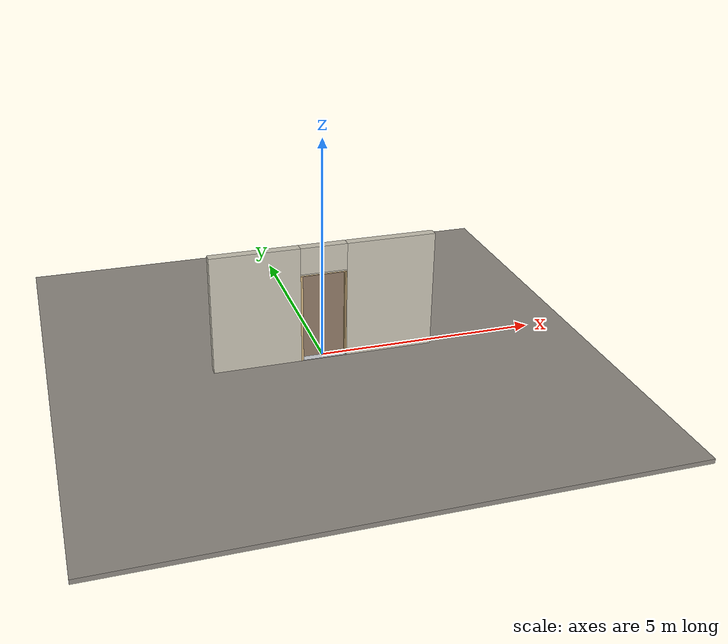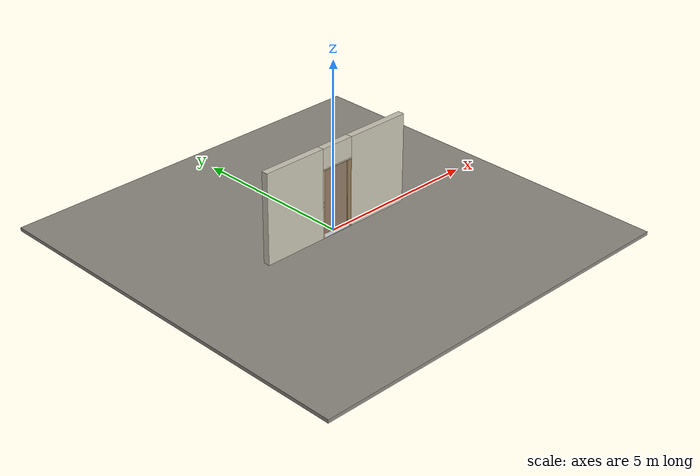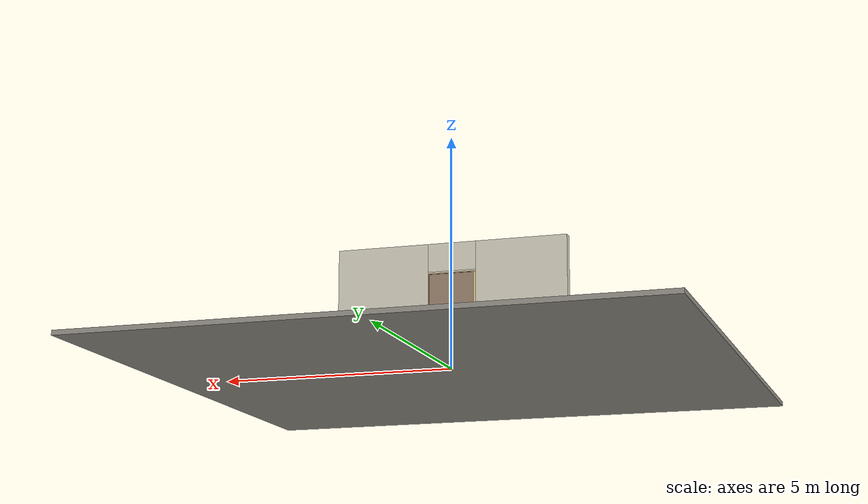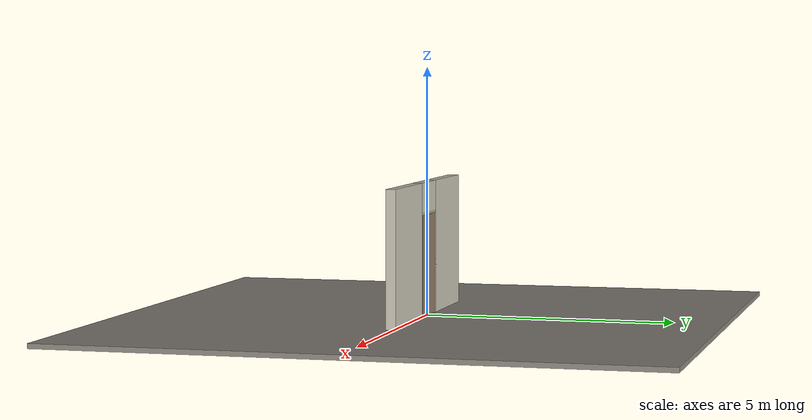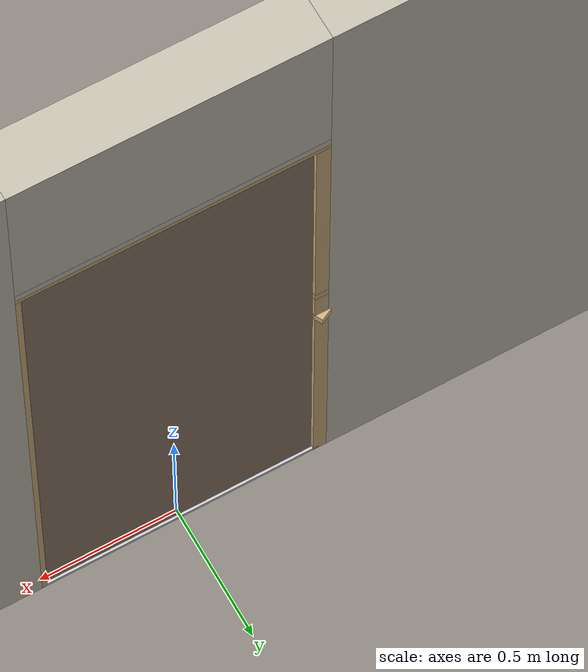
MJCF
<?xml version="1.0" ?>
<mujoco model="db0263_swing_single_minimal">
  <compiler angle="radian" meshdir="../../hardware" texturedir="../../textures" autolimits="true" inertiafromgeom="false"/>
  <option timestep="0.002" integrator="implicitfast" cone="elliptic" impratio="10" noslip_iterations="3">
    <flag multiccd="enable"/>
  </option>
  <size memory="16M"/>
  <default>
    <geom condim="4" solref="0.005 1" solimp="0.95 0.99 0.001"/>
    <joint solreflimit="0.005 1" solimplimit="0.95 0.99 0.001"/>
    <tendon solreflimit="0.005 1"/>
    <equality solref="0.002 1"/>
  </default>
  <visual>
    <headlight ambient="0.4 0.4 0.4" diffuse="0.7 0.7 0.7" specular="0.2 0.2 0.2"/>
    <quality shadowsize="4096"/>
    <map znear="0.01" zfar="60"/>
  </visual>
  <asset>
    <material name="mat_floor" rgba="0.55 0.53 0.5 1" specular="0.2" shininess="0.15" reflectance="0"/>
    <material name="mat_wall" rgba="0.78 0.76 0.7 1" specular="0.2" shininess="0.1" reflectance="0"/>
    <material name="mat_leaf" rgba="0.56 0.475 0.4 1" specular="0.2" shininess="0.5" reflectance="0"/>
    <material name="mat_leaf_panel" rgba="0.515 0.437 0.368 1" specular="0.2" shininess="0.5" reflectance="0"/>
    <material name="mat_hinge" rgba="0.65 0.66 0.68 1" specular="0.74" shininess="0.5" reflectance="0.36"/>
    <material name="mat_op_nickel_satin" rgba="0.72 0.7 0.66 1" specular="0.8" shininess="0.65" reflectance="0.4"/>
    <material name="mat_trim" rgba="0.85 0.66 0.3 1" specular="0.8" shininess="0.75" reflectance="0.4"/>
    <material name="mat_keypad" rgba="0.05 0.05 0.05 1" specular="0.38" shininess="0.3" reflectance="0.12"/>
    <material name="mat_key" rgba="0.85 0.85 0.82 1" specular="0.2" shininess="0.5" reflectance="0"/>
    <material name="mat_bolt" rgba="0.75 0.76 0.77 1" specular="0.8" shininess="0.65" reflectance="0.4"/>
    <material name="mat_deadbolt" rgba="0.85 0.66 0.3 1" specular="0.8" shininess="0.75" reflectance="0.4"/>
    <material name="mat_frame" rgba="0.82 0.7 0.5 1" specular="0.2" shininess="0.45" reflectance="0"/>
    <material name="mat_threshold" rgba="0.8 0.81 0.83 1" specular="0.8" shininess="0.6" reflectance="0.4"/>
    <material name="mat_peephole" rgba="0.85 0.66 0.3 1" specular="0.8" shininess="0.75" reflectance="0.4"/>
    <material name="mat_mailslot" rgba="0.85 0.66 0.3 1" specular="0.8" shininess="0.75" reflectance="0.4"/>
    <material name="mat_bumper_stop" rgba="0.08 0.08 0.08 1" specular="0.2" shininess="0.1" reflectance="0"/>
    <material name="mat_stop_base" rgba="0.9 0.9 0.92 1" specular="0.8" shininess="0.9" reflectance="0.4"/>
    <texture name="skybox" type="skybox" builtin="gradient" rgb1="0.6 0.7 0.85" rgb2="0.9 0.92 0.95" width="256" height="256"/>
  </asset>
  <worldbody>
    <light name="sun" pos="1.5 -2.5 4" dir="-0.3 0.5 -0.8" directional="true" diffuse="0.8 0.8 0.8" specular="0.3 0.3 0.3" castshadow="true"/>
    <light name="fill" pos="-1.5 2.5 3" dir="0.3 -0.5 -0.7" directional="true" diffuse="0.35 0.35 0.4" castshadow="false"/>
    <camera name="robot_view" pos="0 -2.613187 1.734312" xyaxes="1 0 0 0 0.26963 0.962964" fovy="52"/>
    <camera name="far_view" pos="0 2.471187 1.734312" xyaxes="-1 0 0 0 -0.26963 0.962964" fovy="52"/>
    <camera name="iso" pos="-1.932062 -2.206438 2.141063" xyaxes="0.741536 -0.670913 0 0.242917 0.268487 0.932151" fovy="46"/>
    <camera name="detail_handle" pos="-0.199 -0.871 1.245" xyaxes="0.97561 0.219512 0 -0.070934 0.315262 0.94635" fovy="38"/>
    <geom name="floor" type="box" size="6 6 0.05" pos="0 0 -0.05" material="mat_floor" group="0" contype="1" conaffinity="1" friction="0.8 0.005 0.0001" density="2400"/>
    <geom name="wall_left" type="box" size="0.9825 0.1 1.35" pos="-1.5175 -0.071 1.35" material="mat_wall" group="0" contype="1" conaffinity="1" friction="0.6 0.005 0.0001" density="800"/>
    <geom name="wall_right" type="box" size="0.9975 0.1 1.35" pos="1.5025 -0.071 1.35" material="mat_wall" group="0" contype="1" conaffinity="1" friction="0.6 0.005 0.0001" density="800"/>
    <geom name="wall_header" type="box" size="0.52 0.1 0.303" pos="-0.015 -0.071 2.397" material="mat_wall" group="0" contype="1" conaffinity="1" friction="0.6 0.005 0.0001" density="800"/>
    <geom name="jamb_hinge" type="box" size="0.0095 0.1 1.0225" pos="0.4955 -0.071 1.0225" material="mat_frame" group="0" contype="1" conaffinity="1" friction="0.6 0.005 0.0001" density="400"/>
    <geom name="strike_965_wall_n" type="box" size="0.0245 0.08225 0.015" pos="-0.5105 -0.08875 0.965" material="mat_frame" group="0" contype="1" conaffinity="1" friction="0.6 0.005 0.0001" density="400"/>
    <geom name="strike_965_wall_p" type="box" size="0.0245 0.008 0.015" pos="-0.5105 0.0145 0.965" material="mat_frame" group="0" contype="1" conaffinity="1" friction="0.6 0.005 0.0001" density="400"/>
    <geom name="strike_965_ramp" type="box" size="0.0245 0.016771 0.015" pos="-0.515413 0.026543 0.965" quat="0.973249 0 0 0.229753" material="mat_frame" group="0" contype="1" conaffinity="1" friction="0.12 0.005 0.0001" density="400"/>
    <geom name="strike_965_back" type="box" size="0.0155 0.0065 0.015" pos="-0.5195 0 0.965" material="mat_frame" group="0" contype="1" conaffinity="1" friction="0.6 0.005 0.0001" density="400"/>
    <geom name="strike_1105_wall_n" type="box" size="0.0245 0.08075 0.0155" pos="-0.5105 -0.09025 1.105" material="mat_frame" group="0" contype="1" conaffinity="1" friction="0.6 0.005 0.0001" density="400"/>
    <geom name="strike_1105_wall_p" type="box" size="0.0245 0.00975 0.0155" pos="-0.5105 0.01925 1.105" material="mat_frame" group="0" contype="1" conaffinity="1" friction="0.6 0.005 0.0001" density="400"/>
    <geom name="strike_1105_back" type="box" size="0.0098 0.0095 0.0155" pos="-0.5252 0 1.105" material="mat_frame" group="0" contype="1" conaffinity="1" friction="0.6 0.005 0.0001" density="400"/>
    <geom name="jamb_strike_0" type="box" size="0.0245 0.1 0.475" pos="-0.5105 -0.071 0.475" material="mat_frame" group="0" contype="1" conaffinity="1" friction="0.6 0.005 0.0001" density="400"/>
    <geom name="jamb_strike_1" type="box" size="0.0245 0.1 0.05475" pos="-0.5105 -0.071 1.03475" material="mat_frame" group="0" contype="1" conaffinity="1" friction="0.6 0.005 0.0001" density="400"/>
    <geom name="jamb_strike_2" type="box" size="0.0245 0.1 0.46225" pos="-0.5105 -0.071 1.58275" material="mat_frame" group="0" contype="1" conaffinity="1" friction="0.6 0.005 0.0001" density="400"/>
    <geom name="jamb_head" type="box" size="0.52 0.1 0.0095" pos="-0.015 -0.071 2.0545" material="mat_frame" group="0" contype="1" conaffinity="1" friction="0.6 0.005 0.0001" density="400"/>
    <geom name="head_stud" type="box" size="0.52 0.1 0.015" pos="-0.015 -0.071 2.079" material="mat_wall" group="0" contype="1" conaffinity="1" friction="0.6 0.005 0.0001" density="500"/>
    <geom name="stop_hinge" type="box" size="0.0055 0.016 1.0225" pos="0.4805 -0.0385 1.0225" material="mat_frame" group="0" contype="1" conaffinity="1" friction="0.6 0.005 0.0001" density="400"/>
    <geom name="stop_strike" type="box" size="0.0055 0.016 1.0225" pos="-0.4805 -0.0385 1.0225" material="mat_frame" group="0" contype="1" conaffinity="1" friction="0.6 0.005 0.0001" density="400"/>
    <geom name="stop_head" type="box" size="0.486 0.016 0.0055" pos="0 -0.0385 2.0395" material="mat_frame" group="0" contype="1" conaffinity="1" friction="0.6 0.005 0.0001" density="400"/>
    <geom name="threshold" type="box" size="0.505 0.1 0.0065" pos="0 -0.071 0.0065" material="mat_threshold" group="0" contype="1" conaffinity="1" friction="0.5 0.005 0.0001" density="2700"/>
    <site name="approach_point" pos="0 -1.5 0" quat="1 0 0 0" size="0.05" rgba="0.2 0.9 0.2 0.5" group="4"/>
    <site name="goal_point" pos="0 1.5 0" quat="1 0 0 0" size="0.05" rgba="0.2 0.9 0.2 0.5" group="4"/>
    <site name="door_plane_center" pos="0 0 1.0225" quat="1 0 0 0" size="0.02" rgba="0.2 0.9 0.2 0.5" group="4"/>
    <body name="leaf" pos="0.486 0 0">
      <inertial pos="-0.4855 0 1.029" mass="63.469281" quat="-0.5 0.5 0.5 0.5" diaginertia="4.935588131 21.677467428 26.592576137"/>
      <joint name="leaf_hinge" type="hinge" axis="0 0 -1" pos="-0.003 0.029 0" limited="true" range="0 1.570796" damping="0.368237" frictionloss="6.758312" armature="0.02"/>
      <geom name="leaf_slab" type="box" size="0.4825 0.022 1.012" pos="-0.4855 0 1.029" material="mat_leaf" group="0" contype="1" conaffinity="1" friction="0.4 0.005 0.0001" density="1"/>
      <site name="leaf_edge_mid" pos="-0.968 0 1.012" quat="1 0 0 0" size="0.02" rgba="0.2 0.9 0.2 0.5" group="4"/>
      <body name="leaf_handle" pos="-0.913 0 0.965">
        <inertial pos="0 0 0" mass="0.01" quat="1 0 0 0" diaginertia="0.000001 0.000001 0.000001"/>
        <joint name="leaf_handle_hinge" type="hinge" axis="0 1 0" limited="true" range="0 0.87" damping="0.141426" frictionloss="0.048" stiffness="0.5" springref="-0.5" armature="0.01"/>
      </body>
      <body name="leaf_latch_bolt" pos="-0.968 0 0.965">
        <inertial pos="0.008 0 0" mass="0.027149" quat="0 0 -0.707107 0.707107" diaginertia="0.000000328 0.000003943 0.000003943"/>
        <joint name="leaf_latch_bolt_slide" type="slide" axis="1 0 0" limited="true" range="0 0.014" damping="2" frictionloss="0.3" stiffness="400" springref="-0.01" armature="0.1"/>
        <geom name="leaf_latch_bolt_capsule" type="capsule" size="0.005 0.017" pos="0.008 0 0" quat="0.707107 0 -0.707107 0" material="mat_bolt" group="0" contype="1" conaffinity="1" friction="0.2 0.005 0.0001" density="8500"/>
      </body>
    </body>
  </worldbody>
  <tendon>
    <fixed name="leaf_latch_bolt_coupling" limited="true" range="0 10">
      <joint joint="leaf_latch_bolt_slide" coef="1"/>
      <joint joint="leaf_handle_hinge" coef="-0.017284"/>
    </fixed>
  </tendon>
  <sensor>
    <jointpos name="leaf_hinge_pos" joint="leaf_hinge"/>
    <jointvel name="leaf_hinge_vel" joint="leaf_hinge"/>
    <jointpos name="leaf_handle_hinge_pos" joint="leaf_handle_hinge"/>
    <jointvel name="leaf_handle_hinge_vel" joint="leaf_handle_hinge"/>
    <jointpos name="leaf_latch_bolt_slide_pos" joint="leaf_latch_bolt_slide"/>
    <jointvel name="leaf_latch_bolt_slide_vel" joint="leaf_latch_bolt_slide"/>
  </sensor>
</mujoco>
